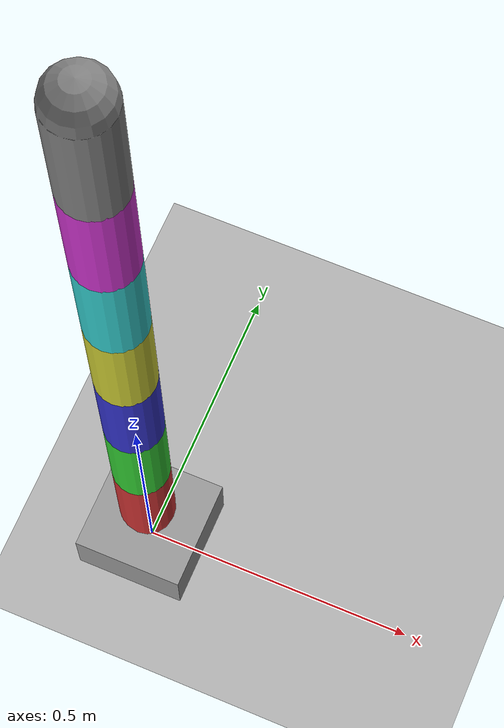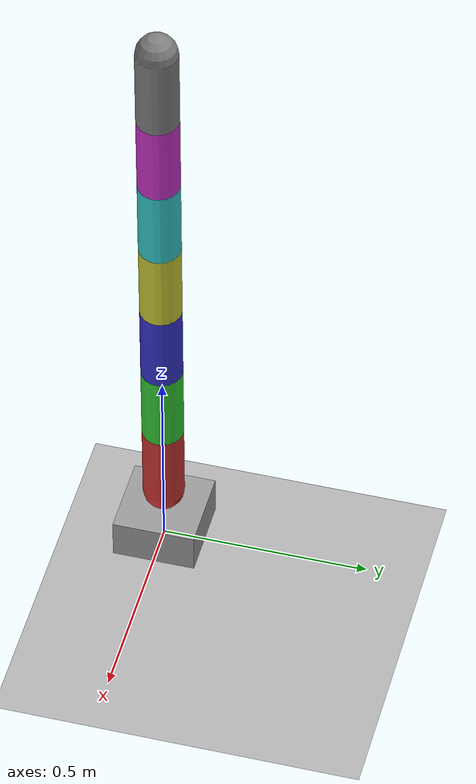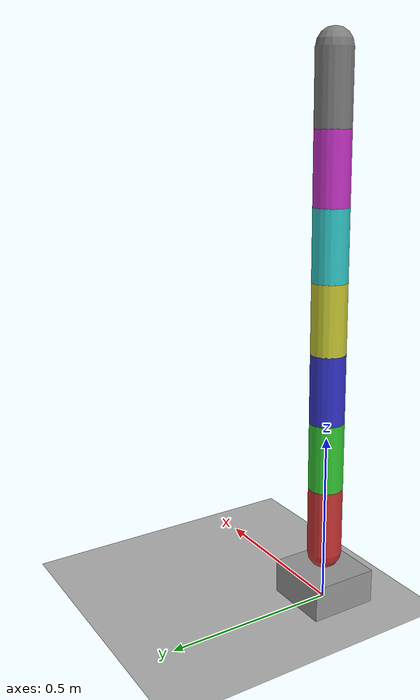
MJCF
<mujoco model="seven_dof_arm">
  <compiler angle="radian" inertiafromgeom="true"/>
  <default>
    <joint armature="0.01" damping="1" limited="true"/>
    <geom contype="1" conaffinity="1" rgba="0.7 0.7 0.7 1"/>
  </default>

  <asset>
    <texture name="grid" type="2d" builtin="checker" rgb1="0.1 0.2 0.3" rgb2="0.2 0.3 0.4" width="500" height="500"/>
    <material name="grid_mat" texture="grid" texrepeat="1 1" texuniform="true"/>
  </asset>

  <worldbody>
    <light pos="0 0 1.5" dir="0 0 -1" diffuse="0.8 0.8 0.8" specular="0.2 0.2 0.2"/>
    <geom name="floor" type="plane" size="0 0 0.05" material="grid_mat"/>

    <body name="base" pos="0 0 0.05">
      <geom type="box" size="0.1 0.1 0.05" rgba="0.6 0.6 0.6 1"/>
      <!-- Joint 1: Base rotation (yaw) -->
      <body name="link1" pos="0 0 0.1">
        <joint name="joint1" type="hinge" axis="0 0 1" range="-3.14 3.14"/>
        <geom type="capsule" size="0.05" fromto="0 0 0 0 0 0.2" rgba="0.8 0.2 0.2 1"/>
        <!-- Joint 2: Shoulder pitch -->
        <body name="link2" pos="0 0 0.2">
          <joint name="joint2" type="hinge" axis="0 1 0" range="-1.57 1.57"/>
          <geom type="capsule" size="0.05" fromto="0 0 0 0 0 0.2" rgba="0.2 0.8 0.2 1"/>
          <!-- Joint 3: Shoulder roll -->
          <body name="link3" pos="0 0 0.2">
            <joint name="joint3" type="hinge" axis="1 0 0" range="-1.57 1.57"/>
            <geom type="capsule" size="0.05" fromto="0 0 0 0 0 0.2" rgba="0.2 0.2 0.8 1"/>
            <!-- Joint 4: Elbow pitch -->
            <body name="link4" pos="0 0 0.2">
              <joint name="joint4" type="hinge" axis="0 1 0" range="-2.0 2.0"/>
              <geom type="capsule" size="0.05" fromto="0 0 0 0 0 0.2" rgba="0.8 0.8 0.2 1"/>
              <!-- Joint 5: Wrist roll -->
              <body name="link5" pos="0 0 0.2">
                <joint name="joint5" type="hinge" axis="1 0 0" range="-1.57 1.57"/>
                <geom type="capsule" size="0.05" fromto="0 0 0 0 0 0.2" rgba="0.2 0.8 0.8 1"/>
                <!-- Joint 6: Wrist pitch -->
                <body name="link6" pos="0 0 0.2">
                  <joint name="joint6" type="hinge" axis="0 1 0" range="-1.57 1.57"/>
                  <geom type="capsule" size="0.05" fromto="0 0 0 0 0 0.2" rgba="0.8 0.2 0.8 1"/>
                  <!-- Joint 7: Wrist yaw -->
                  <body name="link7" pos="0 0 0.2">
                    <joint name="joint7" type="hinge" axis="0 0 1" range="-1.57 1.57"/>
                    <geom type="capsule" size="0.05" fromto="0 0 0 0 0 0.2" rgba="0.5 0.5 0.5 1"/>
                    <site name="end_effector" pos="0 0 0.2" size="0.01"/>
                  </body>
                </body>
              </body>
            </body>
          </body>
        </body>
      </body>
    </body>
  </worldbody>

  <actuator>
    <motor joint="joint1" gear="100"/>
    <motor joint="joint2" gear="100"/>
    <motor joint="joint3" gear="100"/>
    <motor joint="joint4" gear="100"/>
    <motor joint="joint5" gear="100"/>
    <motor joint="joint6" gear="100"/>
    <motor joint="joint7" gear="100"/>
  </actuator>
</mujoco>
